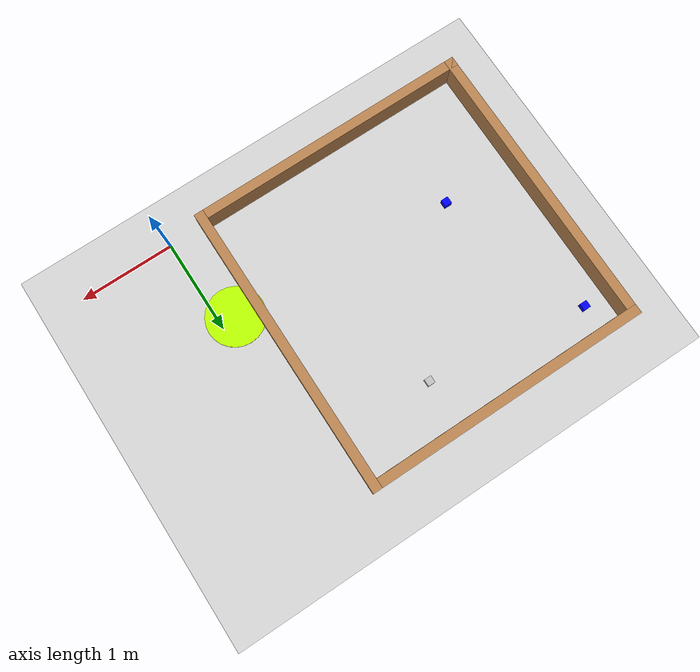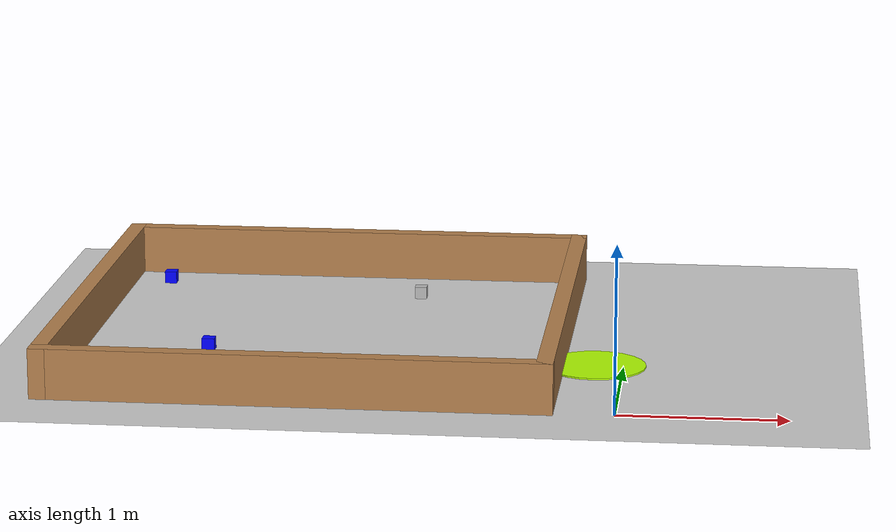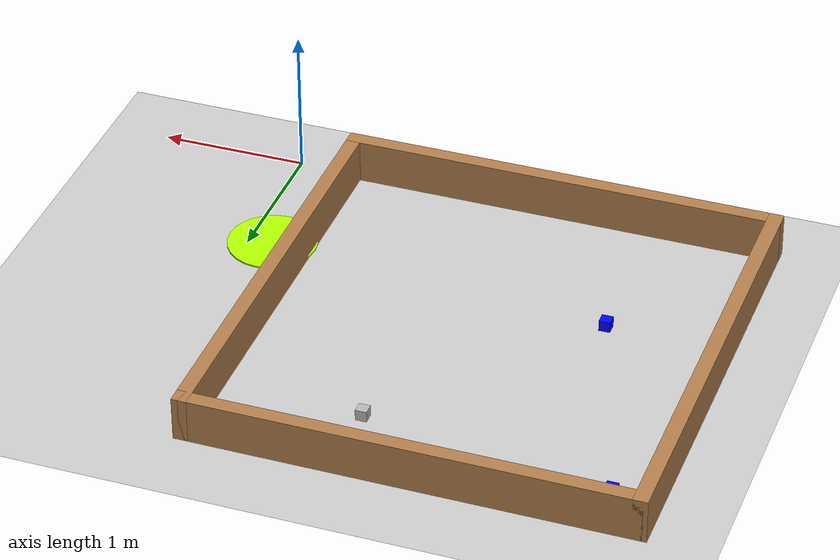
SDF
<sdf version="1.7">
 <world name="default">
  <light name="sun" type="directional">
   <pose>0 0 10 0 -0 0</pose>
   <diffuse>0.8 0.8 0.8 1</diffuse>
   <specular>0.2 0.2 0.2 1</specular>
   <attenuation>
    <range>1000</range>
    <constant>0.9</constant>
    <linear>0.01</linear>
    <quadratic>0.001</quadratic>
   </attenuation>
   <direction>-0.5 0.1 -0.9</direction>
   <spot><inner_angle>0</inner_angle><outer_angle>0</outer_angle><falloff>0</falloff></spot>
  </light>
  <model name="ground_plane">
   <static>1</static>
   <link name="link">
    <collision name="collision">
     <geometry><plane><normal>0 0 1</normal><size>100 100</size></plane></geometry>
     <surface><friction><ode><mu>100</mu><mu2>50</mu2></ode></friction></surface>
    </collision>
    <visual name="visual">
     <cast_shadows>0</cast_shadows>
     <geometry><plane><normal>0 0 1</normal><size>100 100</size></plane></geometry>
     <material>
      <script><uri>file://media/materials/scripts/gazebo.material</uri><name>Gazebo/Grey</name></script>
     </material>
    </visual>
   </link>
  </model>
  <gravity>0 0 -9.8</gravity>
  <magnetic_field>6e-06 2.3e-05 -4.2e-05</magnetic_field>
  <atmosphere type="adiabatic"/>
  <physics type="ode">
   <max_step_size>0.001</max_step_size>
   <real_time_factor>1</real_time_factor>
   <real_time_update_rate>1000</real_time_update_rate>
  </physics>
  <scene><ambient>0.4 0.4 0.4 1</ambient><background>0.7 0.7 0.7 1</background><shadows>1</shadows></scene>
  <spherical_coordinates>
   <surface_model>EARTH_WGS84</surface_model>
   <latitude_deg>0</latitude_deg>
   <longitude_deg>0</longitude_deg>
   <elevation>0</elevation>
   <heading_deg>0</heading_deg>
  </spherical_coordinates>
  <model name="fg4walled">
   <pose>-1.87532 1.53086 0 0 -0 0</pose>
   <link name="Wall_0">
    <collision name="Wall_0_Collision">
     <geometry><box><size>3.048 0.1 0.304</size></box></geometry>
     <pose>0 0 0.152 0 -0 0</pose>
    </collision>
    <visual name="Wall_0_Visual">
     <pose>0 0 0.152 0 -0 0</pose>
     <geometry><box><size>3.048 0.1 0.304</size></box></geometry>
     <material>
      <script><uri>file://media/materials/scripts/gazebo.material</uri><name>Gazebo/Wood</name></script>
      <ambient>1 1 1 1</ambient>
     </material>
     <meta><layer>0</layer></meta>
    </visual>
    <pose>-0 -1.524 0 0 -0 3.14159</pose>
   </link>
   <link name="Wall_3">
    <collision name="Wall_3_Collision">
     <geometry><box><size>3.148 0.1 0.304</size></box></geometry>
     <pose>0 0 0.152 0 -0 0</pose>
    </collision>
    <visual name="Wall_3_Visual">
     <pose>0 0 0.152 0 -0 0</pose>
     <geometry><box><size>3.148 0.1 0.304</size></box></geometry>
     <material>
      <script><uri>file://media/materials/scripts/gazebo.material</uri><name>Gazebo/Wood</name></script>
      <ambient>1 1 1 1</ambient>
     </material>
     <meta><layer>0</layer></meta>
    </visual>
    <pose>-1.474 0 0 0 -0 1.5708</pose>
   </link>
   <link name="Wall_5">
    <collision name="Wall_5_Collision">
     <geometry><box><size>3.048 0.1 0.304</size></box></geometry>
     <pose>0 0 0.152 0 -0 0</pose>
    </collision>
    <visual name="Wall_5_Visual">
     <pose>0 0 0.152 0 -0 0</pose>
     <geometry><box><size>3.048 0.1 0.304</size></box></geometry>
     <material>
      <script><uri>file://media/materials/scripts/gazebo.material</uri><name>Gazebo/Wood</name></script>
      <ambient>1 1 1 1</ambient>
     </material>
     <meta><layer>0</layer></meta>
    </visual>
    <pose>-0 1.524 0 0 -0 0</pose>
   </link>
   <link name="Wall_7">
    <collision name="Wall_7_Collision">
     <geometry><box><size>3.148 0.1 0.304</size></box></geometry>
     <pose>0 0 0.152 0 -0 0</pose>
    </collision>
    <visual name="Wall_7_Visual">
     <pose>0 0 0.152 0 -0 0</pose>
     <geometry><box><size>3.148 0.1 0.304</size></box></geometry>
     <material>
      <script><uri>file://media/materials/scripts/gazebo.material</uri><name>Gazebo/Wood</name></script>
      <ambient>1 1 1 1</ambient>
     </material>
     <meta><layer>0</layer></meta>
    </visual>
    <pose>1.474 0 0 0 -0 -1.5708</pose>
   </link>
   <static>1</static>
  </model>
  <model name="fg3">
   <link name="link_0">
    <inertial>
     <mass>1</mass>
     <inertia>
      <ixx>0.166667</ixx>
      <ixy>0</ixy>
      <ixz>0</ixz>
      <iyy>0.166667</iyy>
      <iyz>0</iyz>
      <izz>0.166667</izz>
     </inertia>
    </inertial>
    <pose>-1.09355 -0.868762 0.010054 0 -0 0</pose>
    <visual name="visual">
     <geometry><box><size>0.0762 0.0762 0.0762</size></box></geometry>
     <material>
      <lighting>1</lighting>
      <script><uri>file://media/materials/scripts/gazebo.material</uri><name>Gazebo/Grey</name></script>
      <shader type="pixel"><normal_map>__default__</normal_map></shader>
      <ambient>0 0 1 1</ambient>
      <diffuse>0 0 1 1</diffuse>
      <specular>0 0 1 1</specular>
      <emissive>0 0 0 1</emissive>
     </material>
    </visual>
    <collision name="collision">
     <geometry><box><size>0.0762 0.0762 0.0762</size></box></geometry>
     <surface>
      <friction>
       <ode><mu>1</mu><mu2>1</mu2><fdir1>0 0 0</fdir1><slip1>0</slip1><slip2>0</slip2></ode>
       <torsional>
        <coefficient>1</coefficient>
        <patch_radius>0</patch_radius>
        <surface_radius>0</surface_radius>
        <use_patch_radius>1</use_patch_radius>
        <ode><slip>0</slip></ode>
       </torsional>
      </friction>
      <bounce><restitution_coefficient>0</restitution_coefficient><threshold>1e+06</threshold></bounce>
      <contact>
       <collide_without_contact>0</collide_without_contact>
       <collide_without_contact_bitmask>1</collide_without_contact_bitmask>
       <collide_bitmask>1</collide_bitmask>
       <ode>
        <soft_cfm>0</soft_cfm>
        <soft_erp>0.2</soft_erp>
        <kp>1e+13</kp>
        <kd>1</kd>
        <max_vel>0.01</max_vel>
        <min_depth>0</min_depth>
       </ode>
       <bullet>
        <split_impulse>1</split_impulse>
        <split_impulse_penetration_threshold>-0.01</split_impulse_penetration_threshold>
        <soft_cfm>0</soft_cfm>
        <soft_erp>0.2</soft_erp>
        <kp>1e+13</kp>
        <kd>1</kd>
       </bullet>
      </contact>
     </surface>
    </collision>
   </link>
   <link name="link_0_clone">
    <inertial>
     <mass>1</mass>
     <inertia>
      <ixx>0.166667</ixx>
      <ixy>0</ixy>
      <ixz>0</ixz>
      <iyy>0.166667</iyy>
      <iyz>0</iyz>
      <izz>0.166667</izz>
     </inertia>
    </inertial>
    <pose>-1.62214 0.742998 0.010054 0 -0 0</pose>
    <visual name="visual">
     <geometry><box><size>0.0762 0.0762 0.0762</size></box></geometry>
     <material>
      <lighting>1</lighting>
      <script><uri>file://media/materials/scripts/gazebo.material</uri><name>Gazebo/Grey</name></script>
      <shader type="pixel"><normal_map>__default__</normal_map></shader>
      <ambient>0 0 1 1</ambient>
      <diffuse>0 0 1 1</diffuse>
      <specular>0 0 1 1</specular>
      <emissive>0 0 0 1</emissive>
     </material>
    </visual>
    <collision name="collision">
     <geometry><box><size>0.0762 0.0762 0.0762</size></box></geometry>
     <surface>
      <friction>
       <ode><mu>1</mu><mu2>1</mu2><fdir1>0 0 0</fdir1><slip1>0</slip1><slip2>0</slip2></ode>
       <torsional>
        <coefficient>1</coefficient>
        <patch_radius>0</patch_radius>
        <surface_radius>0</surface_radius>
        <use_patch_radius>1</use_patch_radius>
        <ode><slip>0</slip></ode>
       </torsional>
      </friction>
      <bounce><restitution_coefficient>0</restitution_coefficient><threshold>1e+06</threshold></bounce>
      <contact>
       <collide_without_contact>0</collide_without_contact>
       <collide_without_contact_bitmask>1</collide_without_contact_bitmask>
       <collide_bitmask>1</collide_bitmask>
       <ode>
        <soft_cfm>0</soft_cfm>
        <soft_erp>0.2</soft_erp>
        <kp>1e+13</kp>
        <kd>1</kd>
        <max_vel>0.01</max_vel>
        <min_depth>0</min_depth>
       </ode>
       <bullet>
        <split_impulse>1</split_impulse>
        <split_impulse_penetration_threshold>-0.01</split_impulse_penetration_threshold>
        <soft_cfm>0</soft_cfm>
        <soft_erp>0.2</soft_erp>
        <kp>1e+13</kp>
        <kd>1</kd>
       </bullet>
      </contact>
     </surface>
    </collision>
   </link>
   <link name="link_1">
    <inertial>
     <mass>10</mass>
     <inertia><ixx>1.66667</ixx><ixy>0</ixy><ixz>0</ixz><iyy>1.66667</iyy><iyz>0</iyz><izz>1.66667</izz></inertia>
    </inertial>
    <pose>1.43359 1.16783 -0.012063 0 -0 0.765</pose>
    <visual name="visual">
     <geometry><box><size>0 0 0</size></box></geometry>
     <material>
      <lighting>1</lighting>
      <script><uri>file://media/materials/scripts/gazebo.material</uri><name>Gazebo/Grey</name></script>
      <shader type="pixel"><normal_map>__default__</normal_map></shader>
      <ambient>0 0.3 0.3 1</ambient>
      <diffuse>1 0.7 0 1</diffuse>
      <specular>1 0.7 0 1</specular>
      <emissive>1 0.7 0 1</emissive>
     </material>
    </visual>
    <collision name="collision">
     <geometry><box><size>0.6096 0.6096 0.01</size></box></geometry>
     <surface>
      <friction>
       <ode><mu>1</mu><mu2>1</mu2><fdir1>0 0 0</fdir1><slip1>0</slip1><slip2>0</slip2></ode>
       <torsional>
        <coefficient>1</coefficient>
        <patch_radius>0</patch_radius>
        <surface_radius>0</surface_radius>
        <use_patch_radius>1</use_patch_radius>
        <ode><slip>0</slip></ode>
       </torsional>
      </friction>
      <bounce><restitution_coefficient>0</restitution_coefficient><threshold>1e+06</threshold></bounce>
      <contact>
       <collide_without_contact>0</collide_without_contact>
       <collide_without_contact_bitmask>1</collide_without_contact_bitmask>
       <collide_bitmask>1</collide_bitmask>
       <ode>
        <soft_cfm>0</soft_cfm>
        <soft_erp>0.2</soft_erp>
        <kp>1e+13</kp>
        <kd>1</kd>
        <max_vel>0.01</max_vel>
        <min_depth>0</min_depth>
       </ode>
       <bullet>
        <split_impulse>1</split_impulse>
        <split_impulse_penetration_threshold>-0.01</split_impulse_penetration_threshold>
        <soft_cfm>0</soft_cfm>
        <soft_erp>0.2</soft_erp>
        <kp>1e+13</kp>
        <kd>1</kd>
       </bullet>
      </contact>
     </surface>
    </collision>
   </link>
   <link name="link_2">
    <inertial>
     <mass>5</mass>
     <inertia><ixx>0.729167</ixx><ixy>0</ixy><ixz>0</ixz><iyy>0.729167</iyy><iyz>0</iyz><izz>0.625</izz></inertia>
    </inertial>
    <pose>1.2821 -1.04206 -0.008046 0 -0 0</pose>
    <visual name="visual">
     <geometry><cylinder><radius>0.3048</radius><length>0.01</length></cylinder></geometry>
     <material>
      <lighting>1</lighting>
      <script><uri>file://media/materials/scripts/gazebo.material</uri><name>Gazebo/Grey</name></script>
      <shader type="pixel"><normal_map>__default__</normal_map></shader>
      <ambient>0 1 0 1</ambient>
      <diffuse>0.7 1 0 1</diffuse>
      <specular>0 1 0 1</specular>
      <emissive>0 1 0 1</emissive>
     </material>
    </visual>
    <collision name="collision">
     <geometry><cylinder><radius>0.3048</radius><length>0.01</length></cylinder></geometry>
     <surface>
      <friction>
       <ode><mu>1</mu><mu2>1</mu2><fdir1>0 0 0</fdir1><slip1>0</slip1><slip2>0</slip2></ode>
       <torsional>
        <coefficient>1</coefficient>
        <patch_radius>0</patch_radius>
        <surface_radius>0</surface_radius>
        <use_patch_radius>1</use_patch_radius>
        <ode><slip>0</slip></ode>
       </torsional>
      </friction>
      <bounce><restitution_coefficient>0</restitution_coefficient><threshold>1e+06</threshold></bounce>
      <contact>
       <collide_without_contact>0</collide_without_contact>
       <collide_without_contact_bitmask>1</collide_without_contact_bitmask>
       <collide_bitmask>1</collide_bitmask>
       <ode>
        <soft_cfm>0</soft_cfm>
        <soft_erp>0.2</soft_erp>
        <kp>1e+13</kp>
        <kd>1</kd>
        <max_vel>0.01</max_vel>
        <min_depth>0</min_depth>
       </ode>
       <bullet>
        <split_impulse>1</split_impulse>
        <split_impulse_penetration_threshold>-0.01</split_impulse_penetration_threshold>
        <soft_cfm>0</soft_cfm>
        <soft_erp>0.2</soft_erp>
        <kp>1e+13</kp>
        <kd>1</kd>
       </bullet>
      </contact>
     </surface>
    </collision>
   </link>
   <static>0</static>
   <pose>-1.44804 2.00719 0.028045 0 1e-06 1e-06</pose>
  </model>
  <model name="aruco_box">
   <link name="box">
    <inertial>
     <mass>0.05</mass>
     <inertia><ixx>0.01</ixx><ixy>0.01</ixy><ixz>0.01</ixz><iyy>0.01</iyy><iyz>0.01</iyz><izz>0.01</izz></inertia>
    </inertial>
    <collision name="box_collision"><geometry><box><size>0.0762 0.0762 0.0762</size></box></geometry></collision>
    <visual name="box_visual">
     <geometry><box><size>0.0762 0.0762 0.0762</size></box></geometry>
     <material>
      <script>
       <uri>model://aruco_box/materials/scripts</uri>
       <uri>model://aruco_box/materials/textures</uri>
       <name>aruco</name>
      </script>
     </material>
    </visual>
   </link>
   <pose>-1.38792 2.5264 0.038103 -3.6e-05 -4e-05 -0</pose>
  </model>
 </world>
</sdf>
